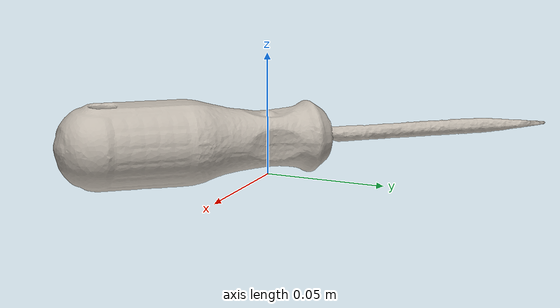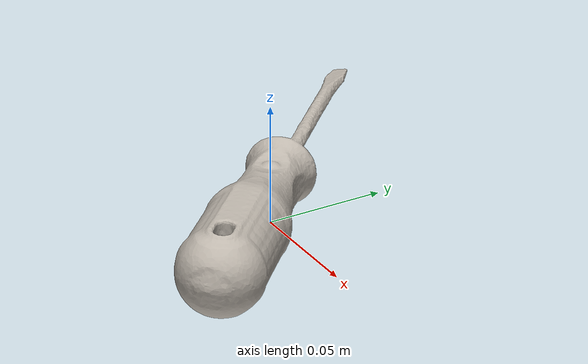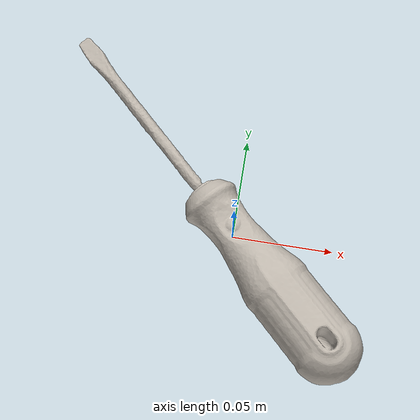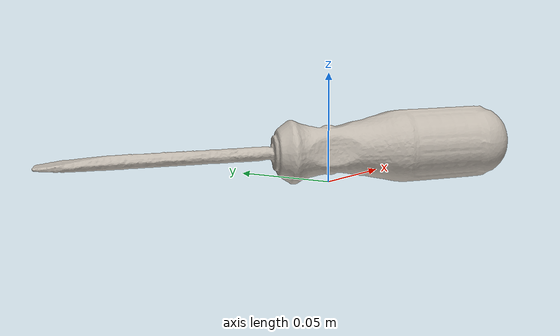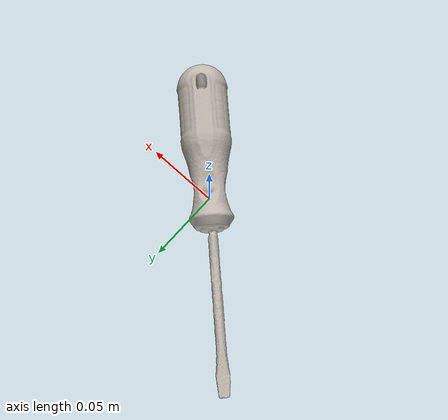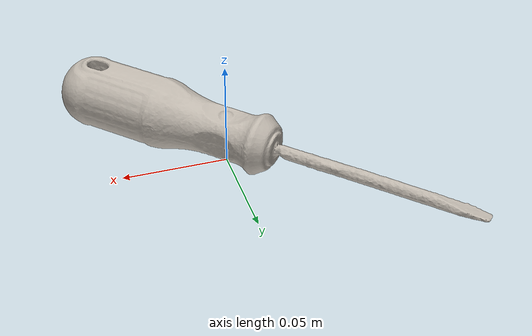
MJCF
<mujoco model="flat_screwdriver">
  <compiler angle="radian" meshdir="assets" texturedir="assets"/>
    <default>
        <default class="ycb_col">
            <geom contype="1" conaffinity="1" group="3" rgba=".4 .5 .6 1"/>
        </default>
        <default class="ycb_viz">
            <geom contype="0" conaffinity="0" type="mesh" mass="0"/>
        </default>
    </default>
  <asset>
    <texture type="2d" name="flat_screwdriver_tex" file="texture_map.png"/>
    <material name="flat_screwdriver_mat" texture="flat_screwdriver_tex" specular="0.5" shininess="0.5"/>
    <mesh file="textured.obj" name="flat_screwdriver"/>
    <mesh file="textured_collision_0.obj" name="flat_screwdriver_collision_0"/>
    <mesh file="textured_collision_1.obj" name="flat_screwdriver_collision_1"/>
    <mesh file="textured_collision_2.obj" name="flat_screwdriver_collision_2"/>
    <mesh file="textured_collision_3.obj" name="flat_screwdriver_collision_3"/>
    <mesh file="textured_collision_4.obj" name="flat_screwdriver_collision_4"/>
    <mesh file="textured_collision_5.obj" name="flat_screwdriver_collision_5"/>
    <mesh file="textured_collision_6.obj" name="flat_screwdriver_collision_6"/>
    <mesh file="textured_collision_7.obj" name="flat_screwdriver_collision_7"/>
  </asset>
  <worldbody>
      <geom material="flat_screwdriver_mat" mesh="flat_screwdriver" class="ycb_viz"/>
      <geom mesh="flat_screwdriver_collision_0" class="ycb_col" conaffinity="1" condim="4" friction="0.1 0.1 0.1" mass="0.0033284189940548806" rgba="1 1 1 1" solimp="0.99 0.99 0.01" solref=".001 0.1" type="mesh" group="3"/>
      <geom mesh="flat_screwdriver_collision_1" class="ycb_col" conaffinity="1" condim="4" friction="0.1 0.1 0.1" mass="0.04122687076641959" rgba="1 1 1 1" solimp="0.99 0.99 0.01" solref=".001 0.1" type="mesh" group="3"/>
      <geom mesh="flat_screwdriver_collision_2" class="ycb_col" conaffinity="1" condim="4" friction="0.1 0.1 0.1" mass="0.012282576923982139" rgba="1 1 1 1" solimp="0.99 0.99 0.01" solref=".001 0.1" type="mesh" group="3"/>
      <geom mesh="flat_screwdriver_collision_3" class="ycb_col" conaffinity="1" condim="4" friction="0.1 0.1 0.1" mass="0.004198055937070079" rgba="1 1 1 1" solimp="0.99 0.99 0.01" solref=".001 0.1" type="mesh" group="3"/>
      <geom mesh="flat_screwdriver_collision_4" class="ycb_col" conaffinity="1" condim="4" friction="0.1 0.1 0.1" mass="0.006110167652505281" rgba="1 1 1 1" solimp="0.99 0.99 0.01" solref=".001 0.1" type="mesh" group="3"/>
      <geom mesh="flat_screwdriver_collision_5" class="ycb_col" conaffinity="1" condim="4" friction="0.1 0.1 0.1" mass="0.002467259477666354" rgba="1 1 1 1" solimp="0.99 0.99 0.01" solref=".001 0.1" type="mesh" group="3"/>
      <geom mesh="flat_screwdriver_collision_6" class="ycb_col" conaffinity="1" condim="4" friction="0.1 0.1 0.1" mass="0.0001507399085428761" rgba="1 1 1 1" solimp="0.99 0.99 0.01" solref=".001 0.1" type="mesh" group="3"/>
      <geom mesh="flat_screwdriver_collision_7" class="ycb_col" conaffinity="1" condim="4" friction="0.1 0.1 0.1" mass="0.00023591033975880893" rgba="1 1 1 1" solimp="0.99 0.99 0.01" solref=".001 0.1" type="mesh" group="3"/>
  </worldbody>
</mujoco>
